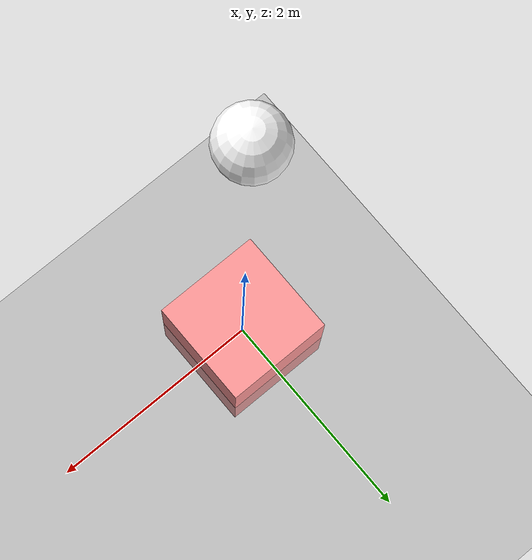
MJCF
<mujoco model="op3 scene">
  <include file="boxball.xml"/>

  <statistic center="0 0 0.2" extent="0.6"/>

  <visual>
    <headlight diffuse="0.6 0.6 0.6" ambient="0.3 0.3 0.3" specular="0 0 0"/>
    <rgba haze="0.15 0.25 0.35 1"/>
    <global azimuth="160" elevation="-20"/>
  </visual>

  <asset>
    <texture type="skybox" builtin="gradient" rgb1="0.3 0.5 0.7" rgb2="0 0 0" width="512" height="3072"/>
    <texture type="2d" name="groundplane" builtin="checker" mark="edge" rgb1="0.2 0.3 0.4" rgb2="0.1 0.2 0.3"
      markrgb="0.8 0.8 0.8" width="300" height="300"/>
    <material name="groundplane" texture="groundplane" texuniform="true" texrepeat="5 5" reflectance="0.2"/>
  </asset>

  <worldbody>
    <light pos="0 0 1.5" dir="0 0 -1" directional="true"/>
    <geom name="floor" size="0 0 0.05" type="plane" material="groundplane"/>
  </worldbody>
</mujoco>

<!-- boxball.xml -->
<mujoco>
    <option gravity="0 0 -9.8"/>

    <worldbody>
        <geom type="plane" size="10 10 0.1" rgba="0.5 0.5 0.5 1 "/>
        <body name="box" pos="0 0 0 ">
            <geom type="box" size="0.5 0.5 0.5" rgba="1 0.6 0.6 1" solref= "0.02 0.5"/>
        </body>

        <body name="ball" pos="0 0 5">
          <joint type= "free"/>
            <geom type="sphere" size="0.25" rgba="1 1 1 1" mass= "1" solref= "0.02 0"/>
        </body>
    </worldbody>

</mujoco>
